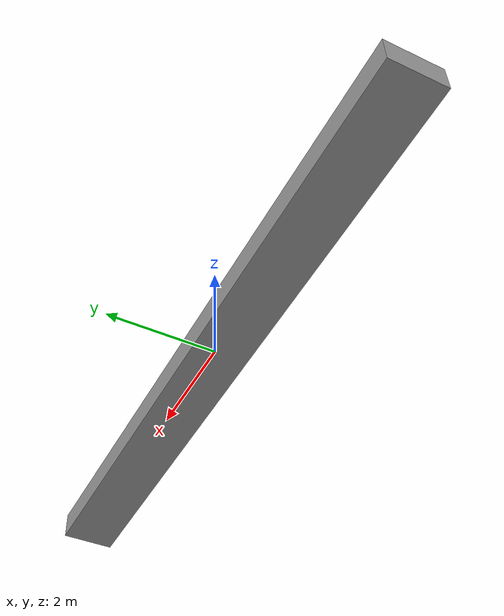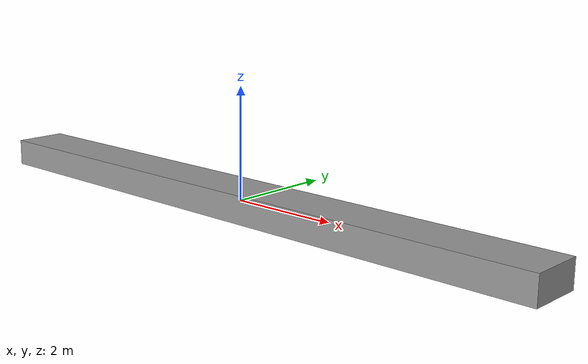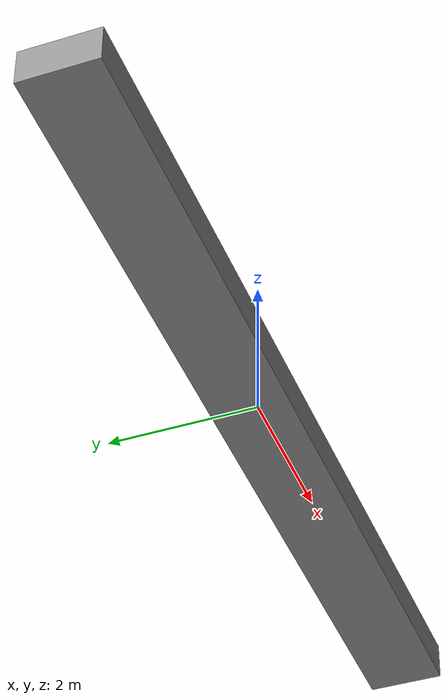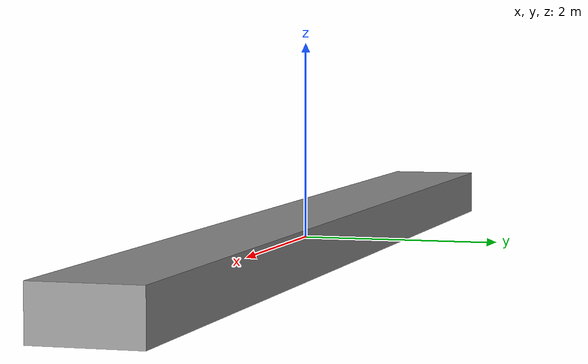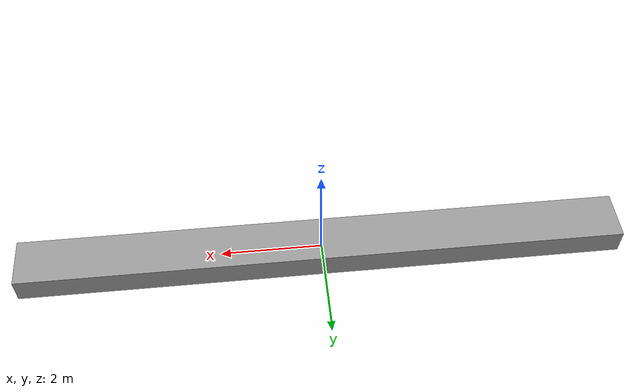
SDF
<?xml version='1.0'?>
<sdf version='1.7'>
  <model name='12x1x05_2d.sdf'>
    <link name='base'>
      <inertial>
        <mass>0</mass>
        <inertia>
          <ixx>0</ixx>
          <ixy>0</ixy>
          <ixz>0</ixz>
          <iyy>0</iyy>
          <iyz>0</iyz>
          <izz>0</izz>
        </inertia>
        <pose>0 0 0 0 -0 0</pose>
      </inertial>
      <pose>-0 -0 0 0 -0 0</pose>
      <gravity>0</gravity>
      <self_collide>0</self_collide>
      <kinematic>1</kinematic>
      <enable_wind>0</enable_wind>
    </link>
    <link name='x_slider'>
      <inertial>
        <mass>0</mass>
        <inertia>
          <ixx>0</ixx>
          <ixy>0</ixy>
          <ixz>0</ixz>
          <iyy>0</iyy>
          <iyz>0</iyz>
          <izz>0</izz>
        </inertia>
        <pose>0 0 0 0 -0 0</pose>
      </inertial>
      <pose>-0 -0 0 0 -0 0</pose>
      <gravity>0</gravity>
      <self_collide>0</self_collide>
      <kinematic>1</kinematic>
      <enable_wind>0</enable_wind>
    </link>
    <link name='y_slider'>
      <inertial>
        <mass>0</mass>
        <inertia>
          <ixx>0</ixx>
          <ixy>0</ixy>
          <ixz>0</ixz>
          <iyy>0</iyy>
          <iyz>0</iyz>
          <izz>0</izz>
        </inertia>
        <pose>0 0 0 0 -0 0</pose>
      </inertial>
      <pose>-0 -0 0 0 -0 0</pose>
      <gravity>0</gravity>
      <self_collide>0</self_collide>
      <kinematic>1</kinematic>
      <enable_wind>0</enable_wind>
    </link>
    <link name='object'>
      <inertial>
        <mass>1</mass>
        <inertia>
          <ixx>0.166667</ixx>
          <ixy>0</ixy>
          <ixz>0</ixz>
          <iyy>0.166667</iyy>
          <iyz>0</iyz>
          <izz>0.166667</izz>
        </inertia>
        <pose>0 0 0 0 -0 0</pose>
      </inertial>
      <pose>-0 -0 0 0 -0 0</pose>
      <gravity>1</gravity>
      <self_collide>0</self_collide>
      <kinematic>0</kinematic>
      <enable_wind>0</enable_wind>
      <visual name='visual'>
        <pose>0 0 0 0 -0 0</pose>
        <geometry>
          <box>
            <size>12 1 0.5</size>
          </box>
        </geometry>
        <material>
          <lighting>1</lighting>
          <script>
            <uri>file://media/materials/scripts/gazebo.material</uri>
            <name>Gazebo/Grey</name>
          </script>
          <shader type='pixel'>
            <normal_map>__default__</normal_map>
          </shader>
          <ambient>0.3 0.3 0.3 1</ambient>
          <diffuse>0.7 0.7 0.7 1</diffuse>
          <specular>0.01 0.01 0.01 1</specular>
          <emissive>0 0 0 1</emissive>
        </material>
        <transparency>0</transparency>
        <cast_shadows>1</cast_shadows>
      </visual>
      <collision name='collision'>
        <laser_retro>0</laser_retro>
        <max_contacts>10</max_contacts>
        <pose>0 0 0 0 -0 0</pose>
        <geometry>
          <box>
            <size>12 1 0.5</size>
          </box>
        </geometry>
        <surface>
          <friction>
            <ode>
              <mu>1</mu>
              <mu2>1</mu2>
              <fdir1>0 0 0</fdir1>
              <slip1>0</slip1>
              <slip2>0</slip2>
            </ode>
            <torsional>
              <coefficient>1</coefficient>
              <patch_radius>0</patch_radius>
              <surface_radius>0</surface_radius>
              <use_patch_radius>1</use_patch_radius>
              <ode>
                <slip>0</slip>
              </ode>
            </torsional>
          </friction>
          <bounce>
            <restitution_coefficient>0</restitution_coefficient>
            <threshold>1e+06</threshold>
          </bounce>
          <contact>
            <collide_without_contact>0</collide_without_contact>
            <collide_without_contact_bitmask>1</collide_without_contact_bitmask>
            <collide_bitmask>1</collide_bitmask>
            <ode>
              <soft_cfm>0</soft_cfm>
              <soft_erp>0.2</soft_erp>
              <kp>1e+13</kp>
              <kd>1</kd>
              <max_vel>0.01</max_vel>
              <min_depth>0</min_depth>
            </ode>
            <bullet>
              <split_impulse>1</split_impulse>
              <split_impulse_penetration_threshold>-0.01</split_impulse_penetration_threshold>
              <soft_cfm>0</soft_cfm>
              <soft_erp>0.2</soft_erp>
              <kp>1e+13</kp>
              <kd>1</kd>
            </bullet>
          </contact>
        </surface>
      </collision>
    </link>
    <joint name="prismatic_x" type="prismatic">
      <parent>base</parent>
      <child>x_slider</child>
      <pose>0 0 0 0 0 0</pose>
      <axis>
        <xyz>1 0 0</xyz>
        <limit>
            <lower>-1000</lower>
            <upper>1000</upper>
        </limit>
      </axis>
    </joint>
    <joint name="prismatic_y" type="prismatic">
      <parent>x_slider</parent>
      <child>y_slider</child>
      <pose>0 0 0 0 0 0</pose>
      <axis>
        <xyz>0 1 0</xyz>
        <limit>
            <lower>-1000</lower>
            <upper>1000</upper>
        </limit>
      </axis>
    </joint>
    <joint name="revolute_z" type="revolute">
      <parent>y_slider</parent>
      <child>object</child>
      <pose>0 0 0 0 0 0</pose>
      <axis>
        <xyz>0 0 1</xyz>
        <limit>
            <lower>-1000</lower>
            <upper>1000</upper>
        </limit>
      </axis>
    </joint>
    <static>0</static>
    <allow_auto_disable>1</allow_auto_disable>
  </model>
</sdf>
